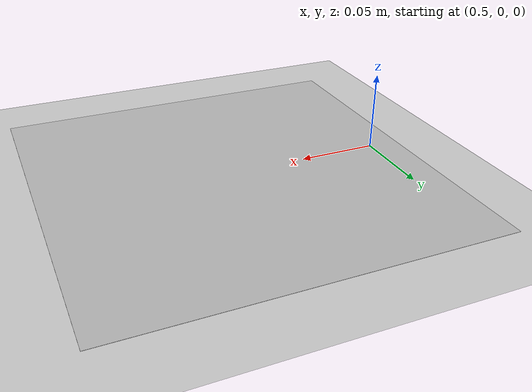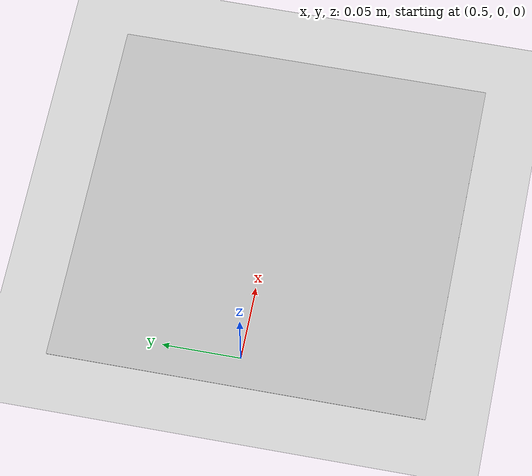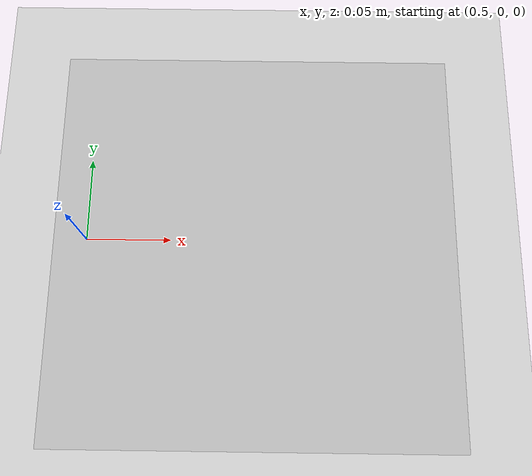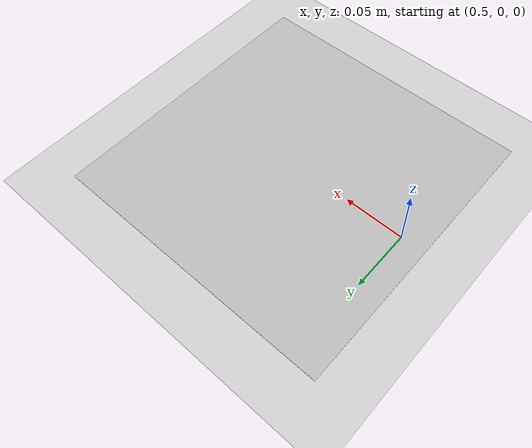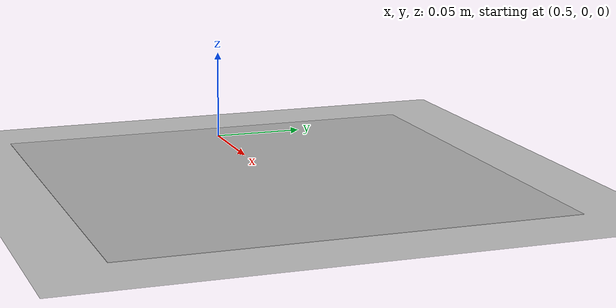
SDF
<?xml version="1.0"?>
<sdf version="1.6">
    <world name="aruco_calibration">
        <scene>
            <shadows>false</shadows>
        </scene>
        <gui fullscreen='0'>
            <camera name='user_camera'>
                <pose frame=''>0.319654 -0.235002 9.29441 0 1.5138 0.009599</pose>
                <view_controller>orbit</view_controller>
                <projection_type>perspective</projection_type>
            </camera>
        </gui>
        <physics type='ode'>
            <real_time_update_rate>1000.0</real_time_update_rate>
            <max_step_size>0.001</max_step_size>
            <real_time_factor>1</real_time_factor>
            <ode>
                <solver>
                    <type>quick</type>
                    <iters>150</iters>
                    <precon_iters>0</precon_iters>
                    <sor>1.400000</sor>
                    <use_dynamic_moi_rescaling>1</use_dynamic_moi_rescaling>
                </solver>
                <constraints>
                    <cfm>0.00001</cfm>
                    <erp>0.2</erp>
                    <contact_max_correcting_vel>2000.000000</contact_max_correcting_vel>
                    <contact_surface_layer>0.01000</contact_surface_layer>
                </constraints>
            </ode>
        </physics>

        <model name="ground">
            <static>1</static>
            <pose>0 0 0 0 0 0</pose>
            <link name="link">
                <visual name="visual">
                    <geometry>
                        <plane>
                            <normal>0 0 1</normal>
                            <size>10 10</size>
                        </plane>
                    </geometry>
                </visual>
                <collision name="collision">
                    <geometry>
                        <plane>
                            <normal>0 0 1</normal>
                            <size>10 10</size>
                        </plane>
                    </geometry>
                </collision>
            </link>
        </model>

        <include>
            <uri>model://sun</uri>
        </include>

        <include>
            <static>1</static>
            <pose>0.6 0 0.0001 0 0 0</pose>
            <uri>model://aruco_0</uri>
        </include>
    </world>
</sdf>

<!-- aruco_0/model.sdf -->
<sdf version="1.6">
    <model name="aruco_0">
        <pose>0 0 0 0 0 0</pose>
        <link name="link">
            <visual name="visual">
                <geometry>
                    <plane>
                        <normal>0 0 1</normal>
                        <size>0.24 0.24</size>
                    </plane>
                </geometry>
                <material>
                    <script>
                        <uri>model://aruco_0/materials/aruco_0.material</uri>
                        <name>aruco_0_material</name>
                    </script>
                </material>
            </visual>
        </link>
    </model>
</sdf>
